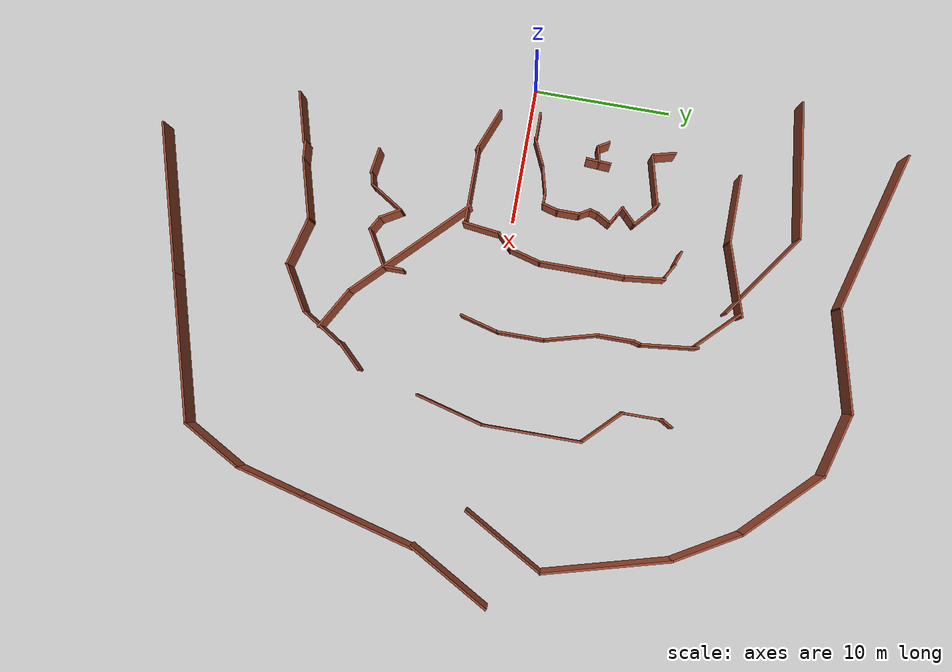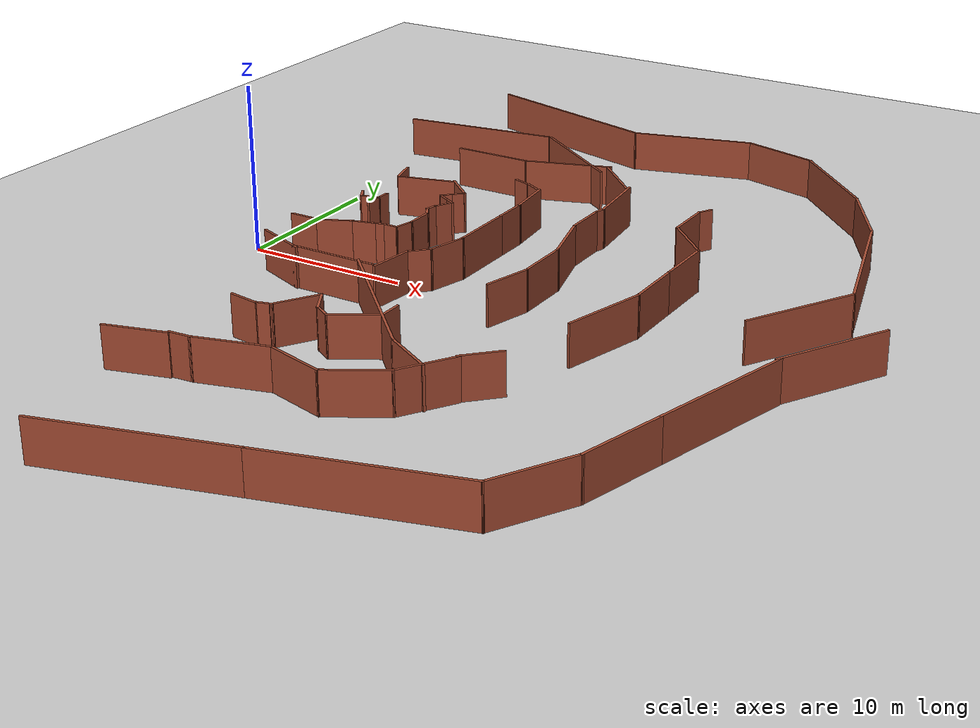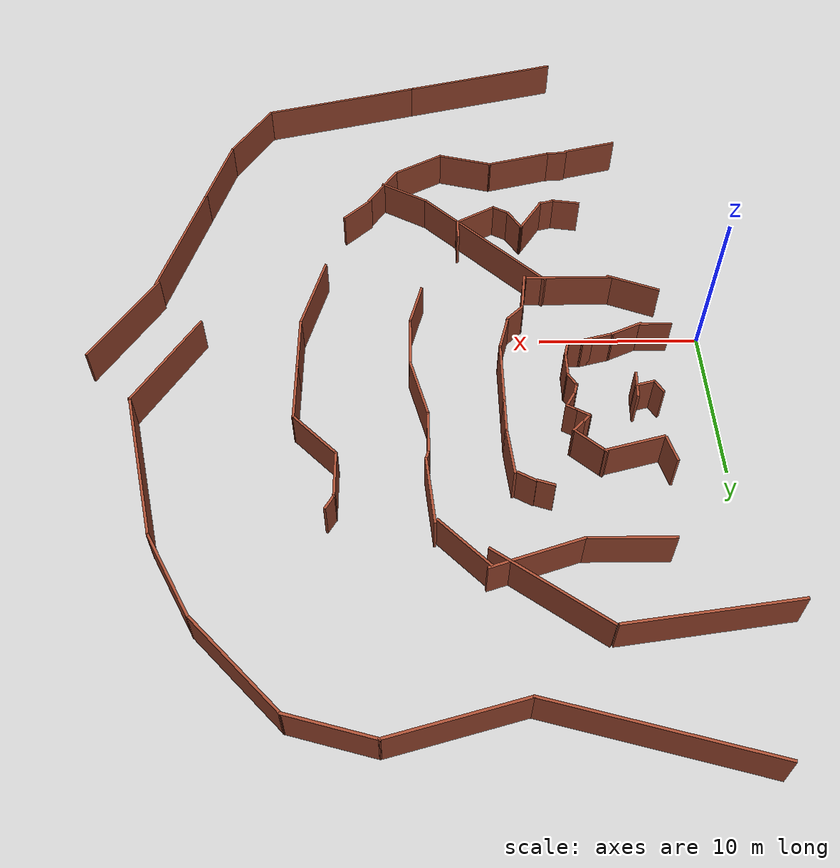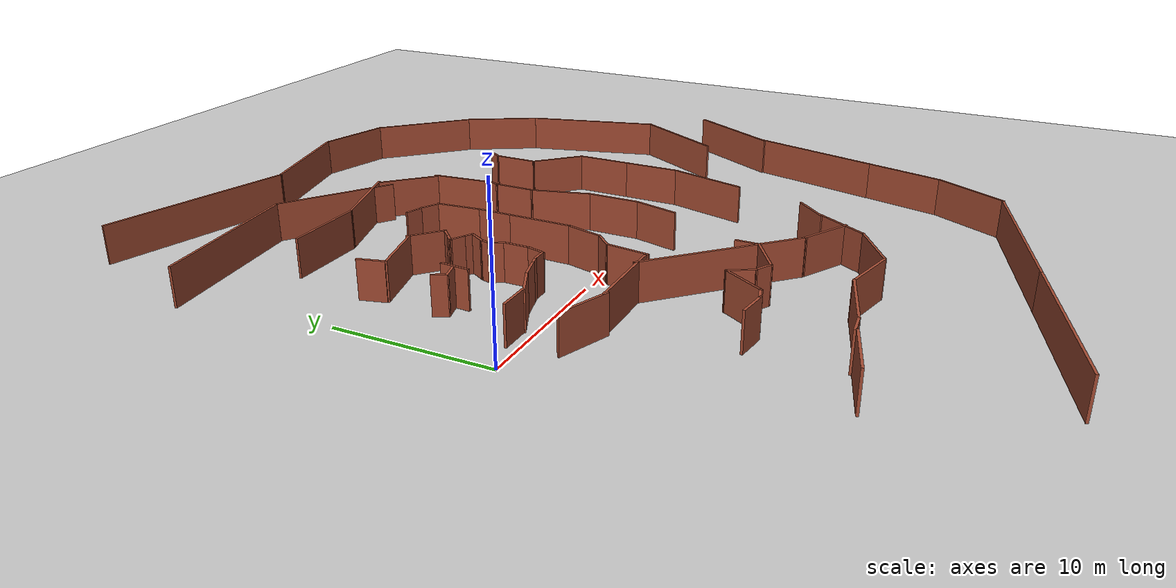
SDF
<sdf version="1.6">
 <world name="default">
  <model name="ground_plane">
   <static>1</static>
   <link name="link">
    <collision name="collision">
     <geometry><plane><normal>0 0 1</normal><size>100 100</size></plane></geometry>
    </collision>
    <visual name="visual">
     <cast_shadows>0</cast_shadows>
     <geometry><plane><normal>0 0 1</normal><size>100 100</size></plane></geometry>
     <material>
      <script><uri>file://media/materials/scripts/gazebo.material</uri><name>Gazebo/Grey</name></script>
     </material>
    </visual>
   </link>
  </model>
  <model name="Untitled1111">
   <link name="Wall_102">
    <pose>15.4586 -1.70898 0 0 -0 1.309</pose>
    <visual name="Wall_102_Visual">
     <pose>0 0 1.25 0 -0 0</pose>
     <geometry><box><size>3 0.15 2.5</size></box></geometry>
     <material>
      <script><uri>file://media/materials/scripts/gazebo.material</uri><name>Gazebo/Bricks</name></script>
      <ambient>1 1 1 1</ambient>
      <shader type="pixel"/>
     </material>
     <meta><layer>0</layer></meta>
    </visual>
    <collision name="Wall_102_Collision">
     <pose>0 0 1.25 0 -0 0</pose>
     <geometry><box><size>3 0.15 2.5</size></box></geometry>
    </collision>
   </link>
   <link name="Wall_103">
    <pose>15.8274 1.34246 0 0 -0 1.5708</pose>
    <visual name="Wall_103_Visual">
     <pose>0 0 1.25 0 -0 0</pose>
     <geometry><box><size>3.5 0.15 2.5</size></box></geometry>
     <material>
      <script><uri>file://media/materials/scripts/gazebo.material</uri><name>Gazebo/Bricks</name></script>
      <ambient>1 1 1 1</ambient>
      <shader type="pixel"/>
     </material>
     <meta><layer>0</layer></meta>
    </visual>
    <collision name="Wall_103_Collision">
     <pose>0 0 1.25 0 -0 0</pose>
     <geometry><box><size>3.5 0.15 2.5</size></box></geometry>
    </collision>
   </link>
   <link name="Wall_104">
    <pose>15.3292 4.87687 0 0 -0 1.8326</pose>
    <visual name="Wall_104_Visual">
     <pose>0 0 1.25 0 -0 0</pose>
     <geometry><box><size>4 0.15 2.5</size></box></geometry>
     <material>
      <script><uri>file://media/materials/scripts/gazebo.material</uri><name>Gazebo/Bricks</name></script>
      <ambient>1 1 1 1</ambient>
      <shader type="pixel"/>
     </material>
     <meta><layer>0</layer></meta>
    </visual>
    <collision name="Wall_104_Collision">
     <pose>0 0 1.25 0 -0 0</pose>
     <geometry><box><size>4 0.15 2.5</size></box></geometry>
    </collision>
   </link>
   <link name="Wall_105">
    <pose>14.831 8.03628 0 0 -0 1.5708</pose>
    <visual name="Wall_105_Visual">
     <pose>0 0 1.25 0 -0 0</pose>
     <geometry><box><size>2.75 0.15 2.5</size></box></geometry>
     <material>
      <script><uri>file://media/materials/scripts/gazebo.material</uri><name>Gazebo/Bricks</name></script>
      <ambient>1 1 1 1</ambient>
      <shader type="pixel"/>
     </material>
     <meta><layer>0</layer></meta>
    </visual>
    <collision name="Wall_105_Collision">
     <pose>0 0 1.25 0 -0 0</pose>
     <geometry><box><size>2.75 0.15 2.5</size></box></geometry>
    </collision>
   </link>
   <link name="Wall_106">
    <pose>14.9086 9.62606 0 0 -0 1.309</pose>
    <visual name="Wall_106_Visual">
     <pose>0 0 1.25 0 -0 0</pose>
     <geometry><box><size>0.75 0.15 2.5</size></box></geometry>
     <material>
      <script><uri>file://media/materials/scripts/gazebo.material</uri><name>Gazebo/Bricks</name></script>
      <ambient>1 1 1 1</ambient>
      <shader type="pixel"/>
     </material>
     <meta><layer>0</layer></meta>
    </visual>
    <collision name="Wall_106_Collision">
     <pose>0 0 1.25 0 -0 0</pose>
     <geometry><box><size>0.75 0.15 2.5</size></box></geometry>
    </collision>
   </link>
   <link name="Wall_107">
    <pose>14.774 11.9399 0 0 -0 1.67529</pose>
    <visual name="Wall_107_Visual">
     <pose>0 0 1.25 0 -0 0</pose>
     <geometry><box><size>4.22037 0.15 2.5</size></box></geometry>
     <material>
      <script><uri>file://media/materials/scripts/gazebo.material</uri><name>Gazebo/Bricks</name></script>
      <ambient>1 1 1 1</ambient>
      <shader type="pixel"/>
     </material>
     <meta><layer>0</layer></meta>
    </visual>
    <collision name="Wall_107_Collision">
     <pose>0 0 1.25 0 -0 0</pose>
     <geometry><box><size>4.22037 0.15 2.5</size></box></geometry>
    </collision>
   </link>
   <link name="Wall_108">
    <pose>13.059 15.1837 0 0 -0 2.35619</pose>
    <visual name="Wall_108_Visual">
     <pose>0 0 1.25 0 -0 0</pose>
     <geometry><box><size>4 0.15 2.5</size></box></geometry>
     <material>
      <script><uri>file://media/materials/scripts/gazebo.material</uri><name>Gazebo/Bricks</name></script>
      <ambient>1 1 1 1</ambient>
      <shader type="pixel"/>
     </material>
     <meta><layer>0</layer></meta>
    </visual>
    <collision name="Wall_108_Collision">
     <pose>0 0 1.25 0 -0 0</pose>
     <geometry><box><size>4 0.15 2.5</size></box></geometry>
    </collision>
   </link>
   <link name="Wall_109">
    <pose>9.25161 15.8373 0 0 0 -2.82454</pose>
    <visual name="Wall_109_Visual">
     <pose>0 0 1.25 0 -0 0</pose>
     <geometry><box><size>5.59694 0.15 2.5</size></box></geometry>
     <material>
      <script><uri>file://media/materials/scripts/gazebo.material</uri><name>Gazebo/Bricks</name></script>
      <ambient>1 1 1 1</ambient>
      <shader type="pixel"/>
     </material>
     <meta><layer>0</layer></meta>
    </visual>
    <collision name="Wall_109_Collision">
     <pose>0 0 1.25 0 -0 0</pose>
     <geometry><box><size>5.59694 0.15 2.5</size></box></geometry>
    </collision>
   </link>
   <link name="Wall_110">
    <pose>4.23888 14.9882 0 0 -0 3.14159</pose>
    <visual name="Wall_110_Visual">
     <pose>0 0 1.25 0 -0 0</pose>
     <geometry><box><size>5 0.15 2.5</size></box></geometry>
     <material>
      <script><uri>file://media/materials/scripts/gazebo.material</uri><name>Gazebo/Bricks</name></script>
      <ambient>1 1 1 1</ambient>
      <shader type="pixel"/>
     </material>
     <meta><layer>0</layer></meta>
    </visual>
    <collision name="Wall_110_Collision">
     <pose>0 0 1.25 0 -0 0</pose>
     <geometry><box><size>5 0.15 2.5</size></box></geometry>
    </collision>
   </link>
   <link name="Wall_125">
    <pose>2.93183 -16.8951 0 0 -0 0.261799</pose>
    <visual name="Wall_125_Visual">
     <pose>0 0 1.25 0 -0 0</pose>
     <geometry><box><size>3.75 0.15 2.5</size></box></geometry>
     <material>
      <script><uri>file://media/materials/scripts/gazebo.material</uri><name>Gazebo/Bricks</name></script>
      <ambient>1 1 1 1</ambient>
      <shader type="pixel"/>
     </material>
     <meta><layer>0</layer></meta>
    </visual>
    <collision name="Wall_125_Collision">
     <pose>0 0 1.25 0 -0 0</pose>
     <geometry><box><size>3.75 0.15 2.5</size></box></geometry>
    </collision>
   </link>
   <link name="Wall_126">
    <pose>5.30143 -16.2622 0 0 -0 0.070665</pose>
    <visual name="Wall_126_Visual">
     <pose>0 0 1.25 0 -0 0</pose>
     <geometry><box><size>1.41503 0.15 2.5</size></box></geometry>
     <material>
      <script><uri>file://media/materials/scripts/gazebo.material</uri><name>Gazebo/Bricks</name></script>
      <ambient>1 1 1 1</ambient>
      <shader type="pixel"/>
     </material>
     <meta><layer>0</layer></meta>
    </visual>
    <collision name="Wall_126_Collision">
     <pose>0 0 1.25 0 -0 0</pose>
     <geometry><box><size>1.41503 0.15 2.5</size></box></geometry>
    </collision>
   </link>
   <link name="Wall_127">
    <pose>8.03326 -15.6546 0 0 -0 0.261799</pose>
    <visual name="Wall_127_Visual">
     <pose>0 0 1.25 0 -0 0</pose>
     <geometry><box><size>4.5 0.15 2.5</size></box></geometry>
     <material>
      <script><uri>file://media/materials/scripts/gazebo.material</uri><name>Gazebo/Bricks</name></script>
      <ambient>1 1 1 1</ambient>
      <shader type="pixel"/>
     </material>
     <meta><layer>0</layer></meta>
    </visual>
    <collision name="Wall_127_Collision">
     <pose>0 0 1.25 0 -0 0</pose>
     <geometry><box><size>4.5 0.15 2.5</size></box></geometry>
    </collision>
   </link>
   <link name="Wall_128">
    <pose>11.8728 -15.5576 0 0 0 -0.261799</pose>
    <visual name="Wall_128_Visual">
     <pose>0 0 1.25 0 -0 0</pose>
     <geometry><box><size>3.75 0.15 2.5</size></box></geometry>
     <material>
      <script><uri>file://media/materials/scripts/gazebo.material</uri><name>Gazebo/Bricks</name></script>
      <ambient>1 1 1 1</ambient>
      <shader type="pixel"/>
     </material>
     <meta><layer>0</layer></meta>
    </visual>
    <collision name="Wall_128_Collision">
     <pose>0 0 1.25 0 -0 0</pose>
     <geometry><box><size>3.75 0.15 2.5</size></box></geometry>
    </collision>
   </link>
   <link name="Wall_129">
    <pose>15.1703 -15.1234 0 0 -0 0.523599</pose>
    <visual name="Wall_129_Visual">
     <pose>0 0 1.25 0 -0 0</pose>
     <geometry><box><size>3.75 0.15 2.5</size></box></geometry>
     <material>
      <script><uri>file://media/materials/scripts/gazebo.material</uri><name>Gazebo/Bricks</name></script>
      <ambient>1 1 1 1</ambient>
      <shader type="pixel"/>
     </material>
     <meta><layer>0</layer></meta>
    </visual>
    <collision name="Wall_129_Collision">
     <pose>0 0 1.25 0 -0 0</pose>
     <geometry><box><size>3.75 0.15 2.5</size></box></geometry>
    </collision>
   </link>
   <link name="Wall_130">
    <pose>17.6592 -12.7729 0 0 -0 1.00068</pose>
    <visual name="Wall_130_Visual">
     <pose>0 0 1.25 0 -0 0</pose>
     <geometry><box><size>3.59625 0.15 2.5</size></box></geometry>
     <material>
      <script><uri>file://media/materials/scripts/gazebo.material</uri><name>Gazebo/Bricks</name></script>
      <ambient>1 1 1 1</ambient>
      <shader type="pixel"/>
     </material>
     <meta><layer>0</layer></meta>
    </visual>
    <collision name="Wall_130_Collision">
     <pose>0 0 1.25 0 -0 0</pose>
     <geometry><box><size>3.59625 0.15 2.5</size></box></geometry>
    </collision>
   </link>
   <link name="Wall_131">
    <pose>19.3275 -10.4914 0 0 -0 0.785398</pose>
    <visual name="Wall_131_Visual">
     <pose>0 0 1.25 0 -0 0</pose>
     <geometry><box><size>2.5 0.15 2.5</size></box></geometry>
     <material>
      <script><uri>file://media/materials/scripts/gazebo.material</uri><name>Gazebo/Bricks</name></script>
      <ambient>1 1 1 1</ambient>
      <shader type="pixel"/>
     </material>
     <meta><layer>0</layer></meta>
    </visual>
    <collision name="Wall_131_Collision">
     <pose>0 0 1.25 0 -0 0</pose>
     <geometry><box><size>2.5 0.15 2.5</size></box></geometry>
    </collision>
   </link>
   <link name="Wall_133">
    <pose>21.9164 -2.75419 0 0 -0 1.309</pose>
    <visual name="Wall_133_Visual">
     <pose>0 0 1.25 0 -0 0</pose>
     <geometry><box><size>5.25 0.15 2.5</size></box></geometry>
     <material>
      <script><uri>file://media/materials/scripts/gazebo.material</uri><name>Gazebo/Bricks</name></script>
      <ambient>1 1 1 1</ambient>
      <shader type="pixel"/>
     </material>
     <meta><layer>0</layer></meta>
    </visual>
    <collision name="Wall_133_Collision">
     <pose>0 0 1.25 0 -0 0</pose>
     <geometry><box><size>5.25 0.15 2.5</size></box></geometry>
    </collision>
   </link>
   <link name="Wall_134">
    <pose>22.5764 1.50892 0 0 -0 1.5708</pose>
    <visual name="Wall_134_Visual">
     <pose>0 0 1.25 0 -0 0</pose>
     <geometry><box><size>3.75 0.15 2.5</size></box></geometry>
     <material>
      <script><uri>file://media/materials/scripts/gazebo.material</uri><name>Gazebo/Bricks</name></script>
      <ambient>1 1 1 1</ambient>
      <shader type="pixel"/>
     </material>
     <meta><layer>0</layer></meta>
    </visual>
    <collision name="Wall_134_Collision">
     <pose>0 0 1.25 0 -0 0</pose>
     <geometry><box><size>3.75 0.15 2.5</size></box></geometry>
    </collision>
   </link>
   <link name="Wall_135">
    <pose>22.5764 5.10892 0 0 -0 1.5708</pose>
    <visual name="Wall_135_Visual">
     <pose>0 0 1.25 0 -0 0</pose>
     <geometry><box><size>3.75 0.15 2.5</size></box></geometry>
     <material>
      <script><uri>file://media/materials/scripts/gazebo.material</uri><name>Gazebo/Bricks</name></script>
      <ambient>1 1 1 1</ambient>
      <shader type="pixel"/>
     </material>
     <meta><layer>0</layer></meta>
    </visual>
    <collision name="Wall_135_Collision">
     <pose>0 0 1.25 0 -0 0</pose>
     <geometry><box><size>3.75 0.15 2.5</size></box></geometry>
    </collision>
   </link>
   <link name="Wall_136">
    <pose>21.3036 8.18172 0 0 -0 2.35619</pose>
    <visual name="Wall_136_Visual">
     <pose>0 0 1.25 0 -0 0</pose>
     <geometry><box><size>3.75 0.15 2.5</size></box></geometry>
     <material>
      <script><uri>file://media/materials/scripts/gazebo.material</uri><name>Gazebo/Bricks</name></script>
      <ambient>1 1 1 1</ambient>
      <shader type="pixel"/>
     </material>
     <meta><layer>0</layer></meta>
    </visual>
    <collision name="Wall_136_Collision">
     <pose>0 0 1.25 0 -0 0</pose>
     <geometry><box><size>3.75 0.15 2.5</size></box></geometry>
    </collision>
   </link>
   <link name="Wall_137">
    <pose>20.0308 10.8795 0 0 -0 1.5708</pose>
    <visual name="Wall_137_Visual">
     <pose>0 0 1.25 0 -0 0</pose>
     <geometry><box><size>3 0.15 2.5</size></box></geometry>
     <material>
      <script><uri>file://media/materials/scripts/gazebo.material</uri><name>Gazebo/Bricks</name></script>
      <ambient>1 1 1 1</ambient>
      <shader type="pixel"/>
     </material>
     <meta><layer>0</layer></meta>
    </visual>
    <collision name="Wall_137_Collision">
     <pose>0 0 1.25 0 -0 0</pose>
     <geometry><box><size>3 0.15 2.5</size></box></geometry>
    </collision>
   </link>
   <link name="Wall_138">
    <pose>20.2433 12.6726 0 0 -0 1.0472</pose>
    <visual name="Wall_138_Visual">
     <pose>0 0 1.25 0 -0 0</pose>
     <geometry><box><size>1 0.15 2.5</size></box></geometry>
     <material>
      <script><uri>file://media/materials/scripts/gazebo.material</uri><name>Gazebo/Bricks</name></script>
      <ambient>1 1 1 1</ambient>
      <shader type="pixel"/>
     </material>
     <meta><layer>0</layer></meta>
    </visual>
    <collision name="Wall_138_Collision">
     <pose>0 0 1.25 0 -0 0</pose>
     <geometry><box><size>1 0.15 2.5</size></box></geometry>
    </collision>
   </link>
   <link name="Wall_143">
    <pose>10.9695 -7.57991 0 0 0 -0.785398</pose>
    <visual name="Wall_143_Visual">
     <pose>0 0 1.25 0 -0 0</pose>
     <geometry><box><size>10.75 0.15 2.5</size></box></geometry>
     <material>
      <script><uri>file://media/materials/scripts/gazebo.material</uri><name>Gazebo/Bricks</name></script>
      <ambient>1 1 1 1</ambient>
      <shader type="pixel"/>
     </material>
     <meta><layer>0</layer></meta>
    </visual>
    <collision name="Wall_143_Collision">
     <pose>0 0 1.25 0 -0 0</pose>
     <geometry><box><size>10.75 0.15 2.5</size></box></geometry>
    </collision>
   </link>
   <link name="Wall_162">
    <pose>4.1854 25.104 0 0 0 -0.261799</pose>
    <visual name="Wall_162_Visual">
     <pose>0 0 1.25 0 -0 0</pose>
     <geometry><box><size>12.25 0.15 2.5</size></box></geometry>
     <material>
      <script><uri>file://media/materials/scripts/gazebo.material</uri><name>Gazebo/Bricks</name></script>
      <ambient>1 1 1 1</ambient>
      <shader type="pixel"/>
     </material>
     <meta><layer>0</layer></meta>
    </visual>
    <collision name="Wall_162_Collision">
     <pose>0 0 1.25 0 -0 0</pose>
     <geometry><box><size>12.25 0.15 2.5</size></box></geometry>
    </collision>
   </link>
   <link name="Wall_163">
    <pose>13.6998 24.5217 0 0 -0 0.261799</pose>
    <visual name="Wall_163_Visual">
     <pose>0 0 1.25 0 -0 0</pose>
     <geometry><box><size>7.75 0.15 2.5</size></box></geometry>
     <material>
      <script><uri>file://media/materials/scripts/gazebo.material</uri><name>Gazebo/Bricks</name></script>
      <ambient>1 1 1 1</ambient>
      <shader type="pixel"/>
     </material>
     <meta><layer>0</layer></meta>
    </visual>
    <collision name="Wall_163_Collision">
     <pose>0 0 1.25 0 -0 0</pose>
     <geometry><box><size>7.75 0.15 2.5</size></box></geometry>
    </collision>
   </link>
   <link name="Wall_164">
    <pose>19.7127 24.8776 0 0 0 -0.261799</pose>
    <visual name="Wall_164_Visual">
     <pose>0 0 1.25 0 -0 0</pose>
     <geometry><box><size>5 0.15 2.5</size></box></geometry>
     <material>
      <script><uri>file://media/materials/scripts/gazebo.material</uri><name>Gazebo/Bricks</name></script>
      <ambient>1 1 1 1</ambient>
      <shader type="pixel"/>
     </material>
     <meta><layer>0</layer></meta>
    </visual>
    <collision name="Wall_164_Collision">
     <pose>0 0 1.25 0 -0 0</pose>
     <geometry><box><size>5 0.15 2.5</size></box></geometry>
    </collision>
   </link>
   <link name="Wall_165">
    <pose>24.5653 21.7397 0 0 0 -0.785398</pose>
    <visual name="Wall_165_Visual">
     <pose>0 0 1.25 0 -0 0</pose>
     <geometry><box><size>7.25 0.15 2.5</size></box></geometry>
     <material>
      <script><uri>file://media/materials/scripts/gazebo.material</uri><name>Gazebo/Bricks</name></script>
      <ambient>1 1 1 1</ambient>
      <shader type="pixel"/>
     </material>
     <meta><layer>0</layer></meta>
    </visual>
    <collision name="Wall_165_Collision">
     <pose>0 0 1.25 0 -0 0</pose>
     <geometry><box><size>7.25 0.15 2.5</size></box></geometry>
    </collision>
   </link>
   <link name="Wall_166">
    <pose>28.413 16.9129 0 0 0 -1.0472</pose>
    <visual name="Wall_166_Visual">
     <pose>0 0 1.25 0 -0 0</pose>
     <geometry><box><size>5.5 0.15 2.5</size></box></geometry>
     <material>
      <script><uri>file://media/materials/scripts/gazebo.material</uri><name>Gazebo/Bricks</name></script>
      <ambient>1 1 1 1</ambient>
      <shader type="pixel"/>
     </material>
     <meta><layer>0</layer></meta>
    </visual>
    <collision name="Wall_166_Collision">
     <pose>0 0 1.25 0 -0 0</pose>
     <geometry><box><size>5.5 0.15 2.5</size></box></geometry>
    </collision>
   </link>
   <link name="Wall_167">
    <pose>30.9605 10.0805 0 0 0 -1.309</pose>
    <visual name="Wall_167_Visual">
     <pose>0 0 1.25 0 -0 0</pose>
     <geometry><box><size>9.5 0.15 2.5</size></box></geometry>
     <material>
      <script><uri>file://media/materials/scripts/gazebo.material</uri><name>Gazebo/Bricks</name></script>
      <ambient>1 1 1 1</ambient>
      <shader type="pixel"/>
     </material>
     <meta><layer>0</layer></meta>
    </visual>
    <collision name="Wall_167_Collision">
     <pose>0 0 1.25 0 -0 0</pose>
     <geometry><box><size>9.5 0.15 2.5</size></box></geometry>
    </collision>
   </link>
   <link name="Wall_168">
    <pose>30.4579 2.59871 0 0 0 -2.0944</pose>
    <visual name="Wall_168_Visual">
     <pose>0 0 1.25 0 -0 0</pose>
     <geometry><box><size>7 0.15 2.5</size></box></geometry>
     <material>
      <script><uri>file://media/materials/scripts/gazebo.material</uri><name>Gazebo/Bricks</name></script>
      <ambient>1 1 1 1</ambient>
      <shader type="pixel"/>
     </material>
     <meta><layer>0</layer></meta>
    </visual>
    <collision name="Wall_168_Collision">
     <pose>0 0 1.25 0 -0 0</pose>
     <geometry><box><size>7 0.15 2.5</size></box></geometry>
    </collision>
   </link>
   <link name="Wall_168_clone">
    <pose>33.5672 -0.785047 0 0 0 -2.0944</pose>
    <visual name="Wall_168_Visual">
     <pose>0 0 1.25 0 -0 0</pose>
     <geometry><box><size>7 0.15 2.5</size></box></geometry>
     <material>
      <script><uri>file://media/materials/scripts/gazebo.material</uri><name>Gazebo/Bricks</name></script>
      <ambient>1 1 1 1</ambient>
      <shader type="pixel"/>
     </material>
     <meta><layer>0</layer></meta>
    </visual>
    <collision name="Wall_168_Collision">
     <pose>0 0 1.25 0 -0 0</pose>
     <geometry><box><size>7 0.15 2.5</size></box></geometry>
    </collision>
   </link>
   <link name="Wall_17">
    <pose>1.24322 4.87944 0 0 0 -1.0472</pose>
    <visual name="Wall_17_Visual">
     <pose>0 0 1.25 0 -0 0</pose>
     <geometry><box><size>1 0.15 2.5</size></box></geometry>
     <material>
      <script><uri>file://media/materials/scripts/gazebo.material</uri><name>Gazebo/Bricks</name></script>
      <ambient>1 1 1 1</ambient>
      <shader type="pixel"/>
     </material>
     <meta><layer>0</layer></meta>
    </visual>
    <collision name="Wall_17_Collision">
     <pose>0 0 1.25 0 -0 0</pose>
     <geometry><box><size>1 0.15 2.5</size></box></geometry>
    </collision>
   </link>
   <link name="Wall_170">
    <pose>30.8852 -7.7736 0 0 0 -1.8326</pose>
    <visual name="Wall_170_Visual">
     <pose>0 0 1.25 0 -0 0</pose>
     <geometry><box><size>8.75 0.15 2.5</size></box></geometry>
     <material>
      <script><uri>file://media/materials/scripts/gazebo.material</uri><name>Gazebo/Bricks</name></script>
      <ambient>1 1 1 1</ambient>
      <shader type="pixel"/>
     </material>
     <meta><layer>0</layer></meta>
    </visual>
    <collision name="Wall_170_Collision">
     <pose>0 0 1.25 0 -0 0</pose>
     <geometry><box><size>8.75 0.15 2.5</size></box></geometry>
    </collision>
   </link>
   <link name="Wall_171">
    <pose>29.1123 -14.3902 0 0 0 -1.8326</pose>
    <visual name="Wall_171_Visual">
     <pose>0 0 1.25 0 -0 0</pose>
     <geometry><box><size>5.25 0.15 2.5</size></box></geometry>
     <material>
      <script><uri>file://media/materials/scripts/gazebo.material</uri><name>Gazebo/Bricks</name></script>
      <ambient>1 1 1 1</ambient>
      <shader type="pixel"/>
     </material>
     <meta><layer>0</layer></meta>
    </visual>
    <collision name="Wall_171_Collision">
     <pose>0 0 1.25 0 -0 0</pose>
     <geometry><box><size>5.25 0.15 2.5</size></box></geometry>
    </collision>
   </link>
   <link name="Wall_172">
    <pose>27.2398 -18.9534 0 0 0 -2.0944</pose>
    <visual name="Wall_172_Visual">
     <pose>0 0 1.25 0 -0 0</pose>
     <geometry><box><size>5 0.15 2.5</size></box></geometry>
     <material>
      <script><uri>file://media/materials/scripts/gazebo.material</uri><name>Gazebo/Bricks</name></script>
      <ambient>1 1 1 1</ambient>
      <shader type="pixel"/>
     </material>
     <meta><layer>0</layer></meta>
    </visual>
    <collision name="Wall_172_Collision">
     <pose>0 0 1.25 0 -0 0</pose>
     <geometry><box><size>5 0.15 2.5</size></box></geometry>
    </collision>
   </link>
   <link name="Wall_173">
    <pose>20.7872 -22.4576 0 0 0 -2.87979</pose>
    <visual name="Wall_173_Visual">
     <pose>0 0 1.25 0 -0 0</pose>
     <geometry><box><size>11 0.15 2.5</size></box></geometry>
     <material>
      <script><uri>file://media/materials/scripts/gazebo.material</uri><name>Gazebo/Bricks</name></script>
      <ambient>1 1 1 1</ambient>
      <shader type="pixel"/>
     </material>
     <meta><layer>0</layer></meta>
    </visual>
    <collision name="Wall_173_Collision">
     <pose>0 0 1.25 0 -0 0</pose>
     <geometry><box><size>11 0.15 2.5</size></box></geometry>
    </collision>
   </link>
   <link name="Wall_174">
    <pose>10.3069 -25.2658 0 0 0 -2.87979</pose>
    <visual name="Wall_174_Visual">
     <pose>0 0 1.25 0 -0 0</pose>
     <geometry><box><size>11 0.15 2.5</size></box></geometry>
     <material>
      <script><uri>file://media/materials/scripts/gazebo.material</uri><name>Gazebo/Bricks</name></script>
      <ambient>1 1 1 1</ambient>
      <shader type="pixel"/>
     </material>
     <meta><layer>0</layer></meta>
    </visual>
    <collision name="Wall_174_Collision">
     <pose>0 0 1.25 0 -0 0</pose>
     <geometry><box><size>11 0.15 2.5</size></box></geometry>
    </collision>
   </link>
   <link name="Wall_18">
    <pose>1.98698 4.65373 0 0 -0 0.261799</pose>
    <visual name="Wall_18_Visual">
     <pose>0 0 1.25 0 -0 0</pose>
     <geometry><box><size>1.25 0.15 2.5</size></box></geometry>
     <material>
      <script><uri>file://media/materials/scripts/gazebo.material</uri><name>Gazebo/Bricks</name></script>
      <ambient>1 1 1 1</ambient>
      <shader type="pixel"/>
     </material>
     <meta><layer>0</layer></meta>
    </visual>
    <collision name="Wall_18_Collision">
     <pose>0 0 1.25 0 -0 0</pose>
     <geometry><box><size>1.25 0.15 2.5</size></box></geometry>
    </collision>
   </link>
   <link name="Wall_180">
    <pose>16.1678 -12.1651 0 0 0 -0.523599</pose>
    <visual name="Wall_180_Visual">
     <pose>0 0 1.25 0 -0 0</pose>
     <geometry><box><size>3.5 0.15 2.5</size></box></geometry>
     <material>
      <script><uri>file://media/materials/scripts/gazebo.material</uri><name>Gazebo/Bricks</name></script>
      <ambient>1 1 1 1</ambient>
      <shader type="pixel"/>
     </material>
     <meta><layer>0</layer></meta>
    </visual>
    <collision name="Wall_180_Collision">
     <pose>0 0 1.25 0 -0 0</pose>
     <geometry><box><size>3.5 0.15 2.5</size></box></geometry>
    </collision>
   </link>
   <link name="Wall_182">
    <pose>0.624028 19.2141 0 0 -0 0.136321</pose>
    <visual name="Wall_182_Visual">
     <pose>0 0 1.25 0 -0 0</pose>
     <geometry><box><size>9.92535 0.15 2.5</size></box></geometry>
     <material>
      <script><uri>file://media/materials/scripts/gazebo.material</uri><name>Gazebo/Bricks</name></script>
      <ambient>1 1 1 1</ambient>
      <shader type="pixel"/>
     </material>
     <meta><layer>0</layer></meta>
    </visual>
    <collision name="Wall_182_Collision">
     <pose>0 0 1.25 0 -0 0</pose>
     <geometry><box><size>9.92535 0.15 2.5</size></box></geometry>
    </collision>
   </link>
   <link name="Wall_183">
    <pose>8.70454 17.7279 0 0 0 -0.618316</pose>
    <visual name="Wall_183_Visual">
     <pose>0 0 1.25 0 -0 0</pose>
     <geometry><box><size>7.56963 0.15 2.5</size></box></geometry>
     <material>
      <script><uri>file://media/materials/scripts/gazebo.material</uri><name>Gazebo/Bricks</name></script>
      <ambient>1 1 1 1</ambient>
      <shader type="pixel"/>
     </material>
     <meta><layer>0</layer></meta>
    </visual>
    <collision name="Wall_183_Collision">
     <pose>0 0 1.25 0 -0 0</pose>
     <geometry><box><size>7.56963 0.15 2.5</size></box></geometry>
    </collision>
   </link>
   <link name="Wall_21">
    <pose>2.50556 4.7383 0 0 0 -1.63384</pose>
    <visual name="Wall_21_Visual">
     <pose>0 0 1.25 0 -0 0</pose>
     <geometry><box><size>1.84484 0.15 2.5</size></box></geometry>
     <material>
      <script><uri>file://media/materials/scripts/gazebo.material</uri><name>Gazebo/Bricks</name></script>
      <ambient>1 1 1 1</ambient>
      <shader type="pixel"/>
     </material>
     <meta><layer>0</layer></meta>
    </visual>
    <collision name="Wall_21_Collision">
     <pose>0 0 1.25 0 -0 0</pose>
     <geometry><box><size>1.84484 0.15 2.5</size></box></geometry>
    </collision>
   </link>
   <link name="Wall_35">
    <pose>0.702466 0.01763 0 0 -0 0</pose>
    <visual name="Wall_35_Visual">
     <pose>0 0 1.25 0 -0 0</pose>
     <geometry><box><size>2 0.15 2.5</size></box></geometry>
     <material>
      <script><uri>file://media/materials/scripts/gazebo.material</uri><name>Gazebo/Bricks</name></script>
      <ambient>1 1 1 1</ambient>
      <shader type="pixel"/>
     </material>
     <meta><layer>0</layer></meta>
    </visual>
    <collision name="Wall_35_Collision">
     <pose>0 0 1.25 0 -0 0</pose>
     <geometry><box><size>2 0.15 2.5</size></box></geometry>
    </collision>
   </link>
   <link name="Wall_36">
    <pose>2.55247 0.390033 0 0 -0 0.431231</pose>
    <visual name="Wall_36_Visual">
     <pose>0 0 1.25 0 -0 0</pose>
     <geometry><box><size>2.18643 0.15 2.5</size></box></geometry>
     <material>
      <script><uri>file://media/materials/scripts/gazebo.material</uri><name>Gazebo/Bricks</name></script>
      <ambient>1 1 1 1</ambient>
      <shader type="pixel"/>
     </material>
     <meta><layer>0</layer></meta>
    </visual>
    <collision name="Wall_36_Collision">
     <pose>0 0 1.25 0 -0 0</pose>
     <geometry><box><size>2.18643 0.15 2.5</size></box></geometry>
    </collision>
   </link>
   <link name="Wall_37">
    <pose>4.12947 0.990339 0 0 -0 0.261799</pose>
    <visual name="Wall_37_Visual">
     <pose>0 0 1.25 0 -0 0</pose>
     <geometry><box><size>1.5 0.15 2.5</size></box></geometry>
     <material>
      <script><uri>file://media/materials/scripts/gazebo.material</uri><name>Gazebo/Bricks</name></script>
      <ambient>1 1 1 1</ambient>
      <shader type="pixel"/>
     </material>
     <meta><layer>0</layer></meta>
    </visual>
    <collision name="Wall_37_Collision">
     <pose>0 0 1.25 0 -0 0</pose>
     <geometry><box><size>1.5 0.15 2.5</size></box></geometry>
    </collision>
   </link>
   <link name="Wall_38">
    <pose>5.07124 1.24269 0 0 -0 0.261799</pose>
    <visual name="Wall_38_Visual">
     <pose>0 0 1.25 0 -0 0</pose>
     <geometry><box><size>0.75 0.15 2.5</size></box></geometry>
     <material>
      <script><uri>file://media/materials/scripts/gazebo.material</uri><name>Gazebo/Bricks</name></script>
      <ambient>1 1 1 1</ambient>
      <shader type="pixel"/>
     </material>
     <meta><layer>0</layer></meta>
    </visual>
    <collision name="Wall_38_Collision">
     <pose>0 0 1.25 0 -0 0</pose>
     <geometry><box><size>0.75 0.15 2.5</size></box></geometry>
    </collision>
   </link>
   <link name="Wall_39">
    <pose>5.78602 1.32033 0 0 -0 0</pose>
    <visual name="Wall_39_Visual">
     <pose>0 0 1.25 0 -0 0</pose>
     <geometry><box><size>1 0.15 2.5</size></box></geometry>
     <material>
      <script><uri>file://media/materials/scripts/gazebo.material</uri><name>Gazebo/Bricks</name></script>
      <ambient>1 1 1 1</ambient>
      <shader type="pixel"/>
     </material>
     <meta><layer>0</layer></meta>
    </visual>
    <collision name="Wall_39_Collision">
     <pose>0 0 1.25 0 -0 0</pose>
     <geometry><box><size>1 0.15 2.5</size></box></geometry>
    </collision>
   </link>
   <link name="Wall_40">
    <pose>6.35337 1.85159 0 0 -0 1.309</pose>
    <visual name="Wall_40_Visual">
     <pose>0 0 1.25 0 -0 0</pose>
     <geometry><box><size>1.25 0.15 2.5</size></box></geometry>
     <material>
      <script><uri>file://media/materials/scripts/gazebo.material</uri><name>Gazebo/Bricks</name></script>
      <ambient>1 1 1 1</ambient>
      <shader type="pixel"/>
     </material>
     <meta><layer>0</layer></meta>
    </visual>
    <collision name="Wall_40_Collision">
     <pose>0 0 1.25 0 -0 0</pose>
     <geometry><box><size>1.25 0.15 2.5</size></box></geometry>
    </collision>
   </link>
   <link name="Wall_41">
    <pose>6.49572 3.18285 0 0 -0 1.5708</pose>
    <visual name="Wall_41_Visual">
     <pose>0 0 1.25 0 -0 0</pose>
     <geometry><box><size>1.75 0.15 2.5</size></box></geometry>
     <material>
      <script><uri>file://media/materials/scripts/gazebo.material</uri><name>Gazebo/Bricks</name></script>
      <ambient>1 1 1 1</ambient>
      <shader type="pixel"/>
     </material>
     <meta><layer>0</layer></meta>
    </visual>
    <collision name="Wall_41_Collision">
     <pose>0 0 1.25 0 -0 0</pose>
     <geometry><box><size>1.75 0.15 2.5</size></box></geometry>
    </collision>
   </link>
   <link name="Wall_42">
    <pose>6.28322 4.35091 0 0 -0 2.0944</pose>
    <visual name="Wall_42_Visual">
     <pose>0 0 1.25 0 -0 0</pose>
     <geometry><box><size>1 0.15 2.5</size></box></geometry>
     <material>
      <script><uri>file://media/materials/scripts/gazebo.material</uri><name>Gazebo/Bricks</name></script>
      <ambient>1 1 1 1</ambient>
      <shader type="pixel"/>
     </material>
     <meta><layer>0</layer></meta>
    </visual>
    <collision name="Wall_42_Collision">
     <pose>0 0 1.25 0 -0 0</pose>
     <geometry><box><size>1 0.15 2.5</size></box></geometry>
    </collision>
   </link>
   <link name="Wall_43">
    <pose>6.14837 5.00875 0 0 -0 1.309</pose>
    <visual name="Wall_43_Visual">
     <pose>0 0 1.25 0 -0 0</pose>
     <geometry><box><size>0.75 0.15 2.5</size></box></geometry>
     <material>
      <script><uri>file://media/materials/scripts/gazebo.material</uri><name>Gazebo/Bricks</name></script>
      <ambient>1 1 1 1</ambient>
      <shader type="pixel"/>
     </material>
     <meta><layer>0</layer></meta>
    </visual>
    <collision name="Wall_43_Collision">
     <pose>0 0 1.25 0 -0 0</pose>
     <geometry><box><size>0.75 0.15 2.5</size></box></geometry>
    </collision>
   </link>
   <link name="Wall_44">
    <pose>6.50101 5.77484 0 0 -0 1.0472</pose>
    <visual name="Wall_44_Visual">
     <pose>0 0 1.25 0 -0 0</pose>
     <geometry><box><size>1.25 0.15 2.5</size></box></geometry>
     <material>
      <script><uri>file://media/materials/scripts/gazebo.material</uri><name>Gazebo/Bricks</name></script>
      <ambient>1 1 1 1</ambient>
      <shader type="pixel"/>
     </material>
     <meta><layer>0</layer></meta>
    </visual>
    <collision name="Wall_44_Collision">
     <pose>0 0 1.25 0 -0 0</pose>
     <geometry><box><size>1.25 0.15 2.5</size></box></geometry>
    </collision>
   </link>
   <link name="Wall_45">
    <pose>6.51621 6.40116 0 0 -0 2.61799</pose>
    <visual name="Wall_45_Visual">
     <pose>0 0 1.25 0 -0 0</pose>
     <geometry><box><size>0.75 0.15 2.5</size></box></geometry>
     <material>
      <script><uri>file://media/materials/scripts/gazebo.material</uri><name>Gazebo/Bricks</name></script>
      <ambient>1 1 1 1</ambient>
      <shader type="pixel"/>
     </material>
     <meta><layer>0</layer></meta>
    </visual>
    <collision name="Wall_45_Collision">
     <pose>0 0 1.25 0 -0 0</pose>
     <geometry><box><size>0.75 0.15 2.5</size></box></geometry>
    </collision>
   </link>
   <link name="Wall_46">
    <pose>5.88834 6.76366 0 0 -0 2.61799</pose>
    <visual name="Wall_46_Visual">
     <pose>0 0 1.25 0 -0 0</pose>
     <geometry><box><size>1 0.15 2.5</size></box></geometry>
     <material>
      <script><uri>file://media/materials/scripts/gazebo.material</uri><name>Gazebo/Bricks</name></script>
      <ambient>1 1 1 1</ambient>
      <shader type="pixel"/>
     </material>
     <meta><layer>0</layer></meta>
    </visual>
    <collision name="Wall_46_Collision">
     <pose>0 0 1.25 0 -0 0</pose>
     <geometry><box><size>1 0.15 2.5</size></box></geometry>
    </collision>
   </link>
   <link name="Wall_47">
    <pose>5.73241 7.18829 0 0 -0 0.785398</pose>
    <visual name="Wall_47_Visual">
     <pose>0 0 1.25 0 -0 0</pose>
     <geometry><box><size>0.75 0.15 2.5</size></box></geometry>
     <material>
      <script><uri>file://media/materials/scripts/gazebo.material</uri><name>Gazebo/Bricks</name></script>
      <ambient>1 1 1 1</ambient>
      <shader type="pixel"/>
     </material>
     <meta><layer>0</layer></meta>
    </visual>
    <collision name="Wall_47_Collision">
     <pose>0 0 1.25 0 -0 0</pose>
     <geometry><box><size>0.75 0.15 2.5</size></box></geometry>
    </collision>
   </link>
   <link name="Wall_48">
    <pose>6.24506 7.70094 0 0 -0 0.785398</pose>
    <visual name="Wall_48_Visual">
     <pose>0 0 1.25 0 -0 0</pose>
     <geometry><box><size>1 0.15 2.5</size></box></geometry>
     <material>
      <script><uri>file://media/materials/scripts/gazebo.material</uri><name>Gazebo/Bricks</name></script>
      <ambient>1 1 1 1</ambient>
      <shader type="pixel"/>
     </material>
     <meta><layer>0</layer></meta>
    </visual>
    <collision name="Wall_48_Collision">
     <pose>0 0 1.25 0 -0 0</pose>
     <geometry><box><size>1 0.15 2.5</size></box></geometry>
    </collision>
   </link>
   <link name="Wall_49">
    <pose>5.69862 8.75263 0 0 -0 2.41606</pose>
    <visual name="Wall_49_Visual">
     <pose>0 0 1.25 0 -0 0</pose>
     <geometry><box><size>2.41415 0.15 2.5</size></box></geometry>
     <material>
      <script><uri>file://media/materials/scripts/gazebo.material</uri><name>Gazebo/Bricks</name></script>
      <ambient>1 1 1 1</ambient>
      <shader type="pixel"/>
     </material>
     <meta><layer>0</layer></meta>
    </visual>
    <collision name="Wall_49_Collision">
     <pose>0 0 1.25 0 -0 0</pose>
     <geometry><box><size>2.41415 0.15 2.5</size></box></geometry>
    </collision>
   </link>
   <link name="Wall_50">
    <pose>3.20605 8.94488 0 0 0 -2.87979</pose>
    <visual name="Wall_50_Visual">
     <pose>0 0 1.25 0 -0 0</pose>
     <geometry><box><size>3.75 0.15 2.5</size></box></geometry>
     <material>
      <script><uri>file://media/materials/scripts/gazebo.material</uri><name>Gazebo/Bricks</name></script>
      <ambient>1 1 1 1</ambient>
      <shader type="pixel"/>
     </material>
     <meta><layer>0</layer></meta>
    </visual>
    <collision name="Wall_50_Collision">
     <pose>0 0 1.25 0 -0 0</pose>
     <geometry><box><size>3.75 0.15 2.5</size></box></geometry>
    </collision>
   </link>
   <link name="Wall_51">
    <pose>1.17871 9.32323 0 0 -0 1.82556</pose>
    <visual name="Wall_51_Visual">
     <pose>0 0 1.25 0 -0 0</pose>
     <geometry><box><size>1.70245 0.15 2.5</size></box></geometry>
     <material>
      <script><uri>file://media/materials/scripts/gazebo.material</uri><name>Gazebo/Bricks</name></script>
      <ambient>1 1 1 1</ambient>
      <shader type="pixel"/>
     </material>
     <meta><layer>0</layer></meta>
    </visual>
    <collision name="Wall_51_Collision">
     <pose>0 0 1.25 0 -0 0</pose>
     <geometry><box><size>1.70245 0.15 2.5</size></box></geometry>
    </collision>
   </link>
   <link name="Wall_56">
    <pose>8.43524 11.5309 0 0 0 -0.320883</pose>
    <visual name="Wall_56_Visual">
     <pose>0 0 1.25 0 -0 0</pose>
     <geometry><box><size>1.10173 0.15 2.5</size></box></geometry>
     <material>
      <script><uri>file://media/materials/scripts/gazebo.material</uri><name>Gazebo/Bricks</name></script>
      <ambient>1 1 1 1</ambient>
      <shader type="pixel"/>
     </material>
     <meta><layer>0</layer></meta>
    </visual>
    <collision name="Wall_56_Collision">
     <pose>0 0 1.25 0 -0 0</pose>
     <geometry><box><size>1.10173 0.15 2.5</size></box></geometry>
    </collision>
   </link>
   <link name="Wall_57">
    <pose>9.46339 11.1133 0 0 0 -0.517838</pose>
    <visual name="Wall_57_Visual">
     <pose>0 0 1.25 0 -0 0</pose>
     <geometry><box><size>1.23085 0.15 2.5</size></box></geometry>
     <material>
      <script><uri>file://media/materials/scripts/gazebo.material</uri><name>Gazebo/Bricks</name></script>
      <ambient>1 1 1 1</ambient>
      <shader type="pixel"/>
     </material>
     <meta><layer>0</layer></meta>
    </visual>
    <collision name="Wall_57_Collision">
     <pose>0 0 1.25 0 -0 0</pose>
     <geometry><box><size>1.23085 0.15 2.5</size></box></geometry>
    </collision>
   </link>
   <link name="Wall_58">
    <pose>10.2409 9.40942 0 0 0 -1.46941</pose>
    <visual name="Wall_58_Visual">
     <pose>0 0 1.25 0 -0 0</pose>
     <geometry><box><size>3.03755 0.15 2.5</size></box></geometry>
     <material>
      <script><uri>file://media/materials/scripts/gazebo.material</uri><name>Gazebo/Bricks</name></script>
      <ambient>1 1 1 1</ambient>
      <shader type="pixel"/>
     </material>
     <meta><layer>0</layer></meta>
    </visual>
    <collision name="Wall_58_Collision">
     <pose>0 0 1.25 0 -0 0</pose>
     <geometry><box><size>3.03755 0.15 2.5</size></box></geometry>
    </collision>
   </link>
   <link name="Wall_59">
    <pose>10.387 6.92306 0 0 0 -1.5708</pose>
    <visual name="Wall_59_Visual">
     <pose>0 0 1.25 0 -0 0</pose>
     <geometry><box><size>2.25 0.15 2.5</size></box></geometry>
     <material>
      <script><uri>file://media/materials/scripts/gazebo.material</uri><name>Gazebo/Bricks</name></script>
      <ambient>1 1 1 1</ambient>
      <shader type="pixel"/>
     </material>
     <meta><layer>0</layer></meta>
    </visual>
    <collision name="Wall_59_Collision">
     <pose>0 0 1.25 0 -0 0</pose>
     <geometry><box><size>2.25 0.15 2.5</size></box></geometry>
    </collision>
   </link>
   <link name="Wall_60">
    <pose>10.387 3.82306 0 0 0 -1.5708</pose>
    <visual name="Wall_60_Visual">
     <pose>0 0 1.25 0 -0 0</pose>
     <geometry><box><size>4.25 0.15 2.5</size></box></geometry>
     <material>
      <script><uri>file://media/materials/scripts/gazebo.material</uri><name>Gazebo/Bricks</name></script>
      <ambient>1 1 1 1</ambient>
      <shader type="pixel"/>
     </material>
     <meta><layer>0</layer></meta>
    </visual>
    <collision name="Wall_60_Collision">
     <pose>0 0 1.25 0 -0 0</pose>
     <geometry><box><size>4.25 0.15 2.5</size></box></geometry>
    </collision>
   </link>
   <link name="Wall_61">
    <pose>10.0829 0.638094 0 0 0 -1.8326</pose>
    <visual name="Wall_61_Visual">
     <pose>0 0 1.25 0 -0 0</pose>
     <geometry><box><size>2.5 0.15 2.5</size></box></geometry>
     <material>
      <script><uri>file://media/materials/scripts/gazebo.material</uri><name>Gazebo/Bricks</name></script>
      <ambient>1 1 1 1</ambient>
      <shader type="pixel"/>
     </material>
     <meta><layer>0</layer></meta>
    </visual>
    <collision name="Wall_61_Collision">
     <pose>0 0 1.25 0 -0 0</pose>
     <geometry><box><size>2.5 0.15 2.5</size></box></geometry>
    </collision>
   </link>
   <link name="Wall_62">
    <pose>9.30151 -0.974166 0 0 0 -2.35619</pose>
    <visual name="Wall_62_Visual">
     <pose>0 0 1.25 0 -0 0</pose>
     <geometry><box><size>1.5 0.15 2.5</size></box></geometry>
     <material>
      <script><uri>file://media/materials/scripts/gazebo.material</uri><name>Gazebo/Bricks</name></script>
      <ambient>1 1 1 1</ambient>
      <shader type="pixel"/>
     </material>
     <meta><layer>0</layer></meta>
    </visual>
    <collision name="Wall_62_Collision">
     <pose>0 0 1.25 0 -0 0</pose>
     <geometry><box><size>1.5 0.15 2.5</size></box></geometry>
    </collision>
   </link>
   <link name="Wall_63">
    <pose>8.66154 -2.76517 0 0 0 -1.69399</pose>
    <visual name="Wall_63_Visual">
     <pose>0 0 1.25 0 -0 0</pose>
     <geometry><box><size>2.79748 0.15 2.5</size></box></geometry>
     <material>
      <script><uri>file://media/materials/scripts/gazebo.material</uri><name>Gazebo/Bricks</name></script>
      <ambient>1 1 1 1</ambient>
      <shader type="pixel"/>
     </material>
     <meta><layer>0</layer></meta>
    </visual>
    <collision name="Wall_63_Collision">
     <pose>0 0 1.25 0 -0 0</pose>
     <geometry><box><size>2.79748 0.15 2.5</size></box></geometry>
    </collision>
   </link>
   <link name="Wall_64">
    <pose>5.61107 -3.97248 0 0 -0 3.14159</pose>
    <visual name="Wall_64_Visual">
     <pose>0 0 1.25 0 -0 0</pose>
     <geometry><box><size>5.5 0.15 2.5</size></box></geometry>
     <material>
      <script><uri>file://media/materials/scripts/gazebo.material</uri><name>Gazebo/Bricks</name></script>
      <ambient>1 1 1 1</ambient>
      <shader type="pixel"/>
     </material>
     <meta><layer>0</layer></meta>
    </visual>
    <collision name="Wall_64_Collision">
     <pose>0 0 1.25 0 -0 0</pose>
     <geometry><box><size>5.5 0.15 2.5</size></box></geometry>
    </collision>
   </link>
   <link name="Wall_65">
    <pose>1.61699 -3.46708 0 0 -0 2.76162</pose>
    <visual name="Wall_65_Visual">
     <pose>0 0 1.25 0 -0 0</pose>
     <geometry><box><size>3.44907 0.15 2.5</size></box></geometry>
     <material>
      <script><uri>file://media/materials/scripts/gazebo.material</uri><name>Gazebo/Bricks</name></script>
      <ambient>1 1 1 1</ambient>
      <shader type="pixel"/>
     </material>
     <meta><layer>0</layer></meta>
    </visual>
    <collision name="Wall_65_Collision">
     <pose>0 0 1.25 0 -0 0</pose>
     <geometry><box><size>3.44907 0.15 2.5</size></box></geometry>
    </collision>
   </link>
   <link name="Wall_92">
    <pose>5.18319 -11.1172 0 0 0 -0.158534</pose>
    <visual name="Wall_92_Visual">
     <pose>0 0 1.25 0 -0 0</pose>
     <geometry><box><size>1.92065 0.15 2.5</size></box></geometry>
     <material>
      <script><uri>file://media/materials/scripts/gazebo.material</uri><name>Gazebo/Bricks</name></script>
      <ambient>1 1 1 1</ambient>
      <shader type="pixel"/>
     </material>
     <meta><layer>0</layer></meta>
    </visual>
    <collision name="Wall_92_Collision">
     <pose>0 0 1.25 0 -0 0</pose>
     <geometry><box><size>1.92065 0.15 2.5</size></box></geometry>
    </collision>
   </link>
   <link name="Wall_93">
    <pose>6.52113 -11.0937 0 0 -0 0.261799</pose>
    <visual name="Wall_93_Visual">
     <pose>0 0 1.25 0 -0 0</pose>
     <geometry><box><size>1 0.15 2.5</size></box></geometry>
     <material>
      <script><uri>file://media/materials/scripts/gazebo.material</uri><name>Gazebo/Bricks</name></script>
      <ambient>1 1 1 1</ambient>
      <shader type="pixel"/>
     </material>
     <meta><layer>0</layer></meta>
    </visual>
    <collision name="Wall_93_Collision">
     <pose>0 0 1.25 0 -0 0</pose>
     <geometry><box><size>1 0.15 2.5</size></box></geometry>
    </collision>
   </link>
   <link name="Wall_94">
    <pose>7.62875 -9.85719 0 0 -0 1.00434</pose>
    <visual name="Wall_94_Visual">
     <pose>0 0 1.25 0 -0 0</pose>
     <geometry><box><size>2.94625 0.15 2.5</size></box></geometry>
     <material>
      <script><uri>file://media/materials/scripts/gazebo.material</uri><name>Gazebo/Bricks</name></script>
      <ambient>1 1 1 1</ambient>
      <shader type="pixel"/>
     </material>
     <meta><layer>0</layer></meta>
    </visual>
    <collision name="Wall_94_Collision">
     <pose>0 0 1.25 0 -0 0</pose>
     <geometry><box><size>2.94625 0.15 2.5</size></box></geometry>
    </collision>
   </link>
   <link name="Wall_95">
    <pose>8.77905 -9.37027 0 0 0 -1.0472</pose>
    <visual name="Wall_95_Visual">
     <pose>0 0 1.25 0 -0 0</pose>
     <geometry><box><size>1.75 0.15 2.5</size></box></geometry>
     <material>
      <script><uri>file://media/materials/scripts/gazebo.material</uri><name>Gazebo/Bricks</name></script>
      <ambient>1 1 1 1</ambient>
      <shader type="pixel"/>
     </material>
     <meta><layer>0</layer></meta>
    </visual>
    <collision name="Wall_95_Collision">
     <pose>0 0 1.25 0 -0 0</pose>
     <geometry><box><size>1.75 0.15 2.5</size></box></geometry>
    </collision>
   </link>
   <link name="Wall_96">
    <pose>9.65536 -10.3381 0 0 0 -0.523599</pose>
    <visual name="Wall_96_Visual">
     <pose>0 0 1.25 0 -0 0</pose>
     <geometry><box><size>1.25 0.15 2.5</size></box></geometry>
     <material>
      <script><uri>file://media/materials/scripts/gazebo.material</uri><name>Gazebo/Bricks</name></script>
      <ambient>1 1 1 1</ambient>
      <shader type="pixel"/>
     </material>
     <meta><layer>0</layer></meta>
    </visual>
    <collision name="Wall_96_Collision">
     <pose>0 0 1.25 0 -0 0</pose>
     <geometry><box><size>1.25 0.15 2.5</size></box></geometry>
    </collision>
   </link>
   <link name="Wall_97">
    <pose>11.3658 -9.90059 0 0 -0 0.523599</pose>
    <visual name="Wall_97_Visual">
     <pose>0 0 1.25 0 -0 0</pose>
     <geometry><box><size>3 0.15 2.5</size></box></geometry>
     <material>
      <script><uri>file://media/materials/scripts/gazebo.material</uri><name>Gazebo/Bricks</name></script>
      <ambient>1 1 1 1</ambient>
      <shader type="pixel"/>
     </material>
     <meta><layer>0</layer></meta>
    </visual>
    <collision name="Wall_97_Collision">
     <pose>0 0 1.25 0 -0 0</pose>
     <geometry><box><size>3 0.15 2.5</size></box></geometry>
    </collision>
   </link>
   <link name="Wall_98">
    <pose>12.5999 -8.51309 0 0 -0 1.5708</pose>
    <visual name="Wall_98_Visual">
     <pose>0 0 1.25 0 -0 0</pose>
     <geometry><box><size>1.5 0.15 2.5</size></box></geometry>
     <material>
      <script><uri>file://media/materials/scripts/gazebo.material</uri><name>Gazebo/Bricks</name></script>
      <ambient>1 1 1 1</ambient>
      <shader type="pixel"/>
     </material>
     <meta><layer>0</layer></meta>
    </visual>
    <collision name="Wall_98_Collision">
     <pose>0 0 1.25 0 -0 0</pose>
     <geometry><box><size>1.5 0.15 2.5</size></box></geometry>
    </collision>
   </link>
   <static>1</static>
   <pose>2.40305 0.669162 0 0 -0 0</pose>
  </model>
 </world>
</sdf>
